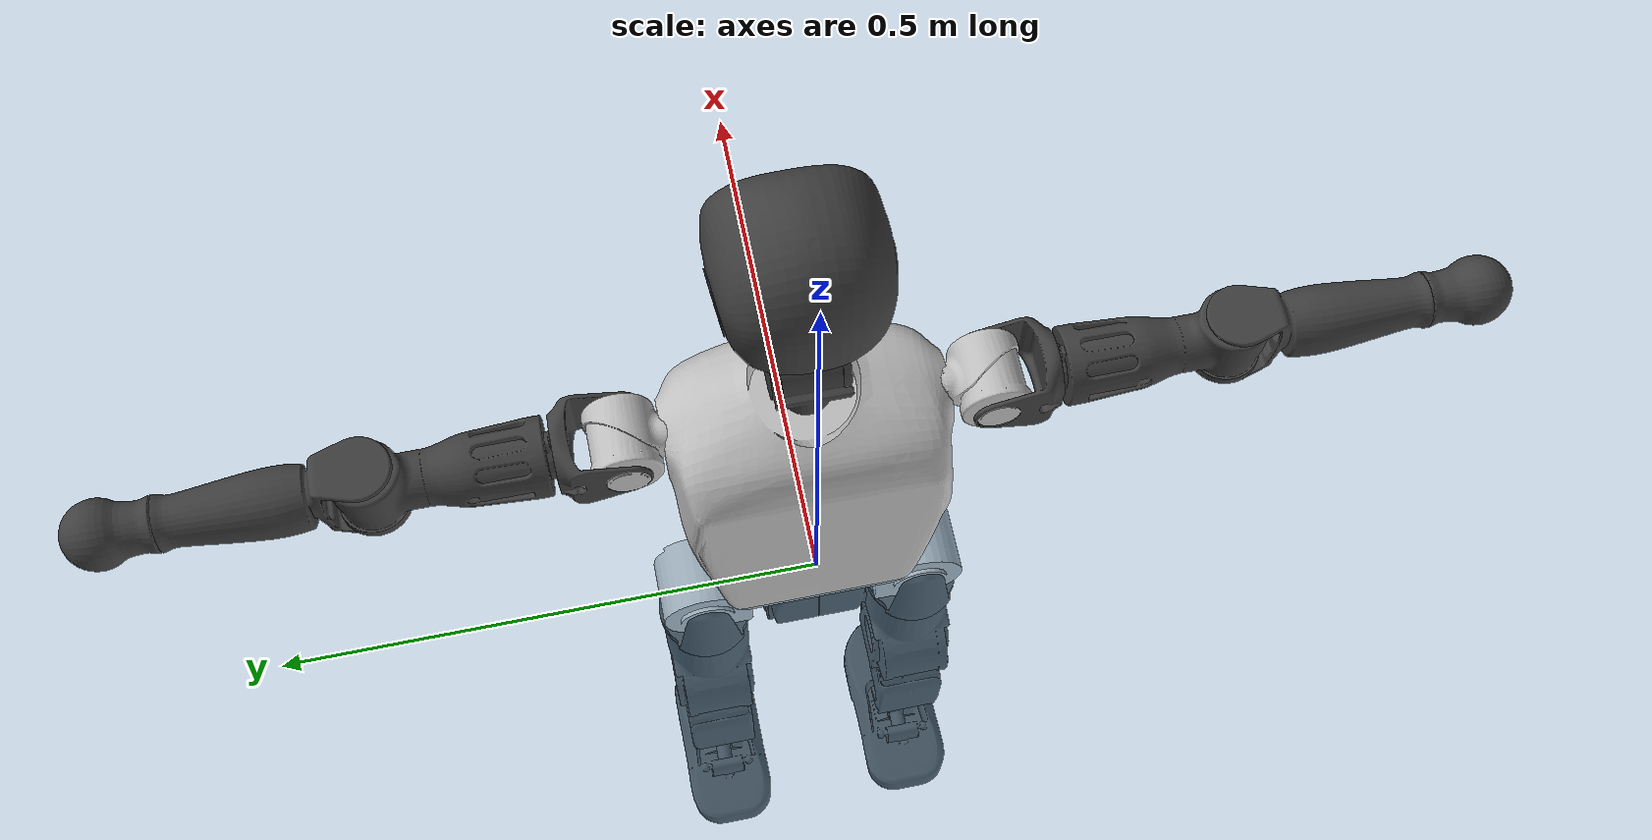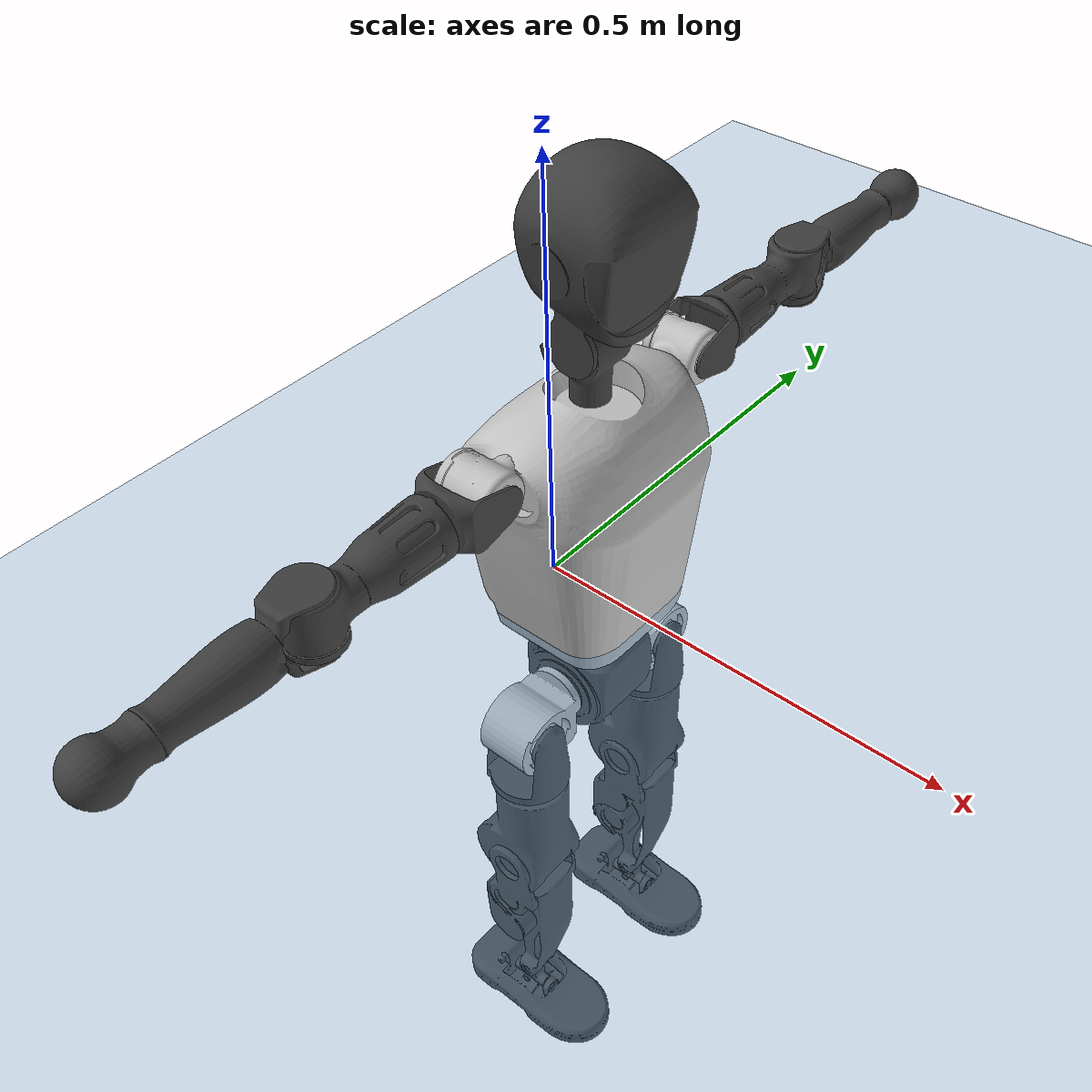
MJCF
<mujoco model="T1">
  <compiler angle="radian" assetdir="assets" balanceinertia="true" inertiafromgeom="false"/>

  <option timestep="0.005" density="1.2" viscosity="2e-05"/>

  <size nkey="1"/>

  <visual>
    <quality shadowsize="8192"/>
    <map shadowclip="0.5"/>
  </visual>

  <default>
    <default class="/">
      <joint armature="0.01" damping="0.01" frictionloss="0.1"/>
      <geom contype="0" conaffinity="0" group="1" solref="-1000 -80"/>
      <site size="0.01 0.005 0.005" group="5"/>
      <general forcelimited="true" biastype="affine" gainprm="25" biasprm="0 -25 -0.6"/>
      <default class="t1">
        <geom rgba="0.25 0.25 0.25 1"/>
        <default class="visual">
          <geom type="mesh" group="2"/>
        </default>
        <default class="collision">
          <geom group="3"/>
        </default>
        <default class="foot">
          <geom size="0.1115 0.05 0.015" type="box" condim="6" group="4" priority="1" solimp="0.015 1 0.015"/>
        </default>
        <default class="reward_collision_sphere">
          <geom group="5" rgba="1 0 0 1"/>
        </default>
      </default>
    </default>
  </default>

  <asset>
    <texture type="skybox" colorspace="auto" name="//unnamed_texture_0" builtin="gradient" rgb1="0.95 0.95 0.95" rgb2="0.95 0.95 0.95" width="100" height="600"/>
    <texture type="2d" colorspace="auto" name="texplane" builtin="checker" rgb1="0.345 0.575 0.748" rgb2="0.345 0.575 0.748" markrgb="1 1 1" width="512" height="512"/>
    <material name="MatPlane" class="/" texture="texplane" texuniform="true" texrepeat="2 2" specular="0.9"/>
    <mesh name="Trunk" class="/" file="Trunk.stl"/>
    <mesh name="H1" class="/" file="H1.stl"/>
    <mesh name="H2" class="/" file="H2.stl"/>
    <mesh name="AL1" class="/" file="AL1.stl"/>
    <mesh name="AL2" class="/" file="AL2.stl"/>
    <mesh name="AL3" class="/" file="AL3.stl"/>
    <mesh name="left_hand_link" class="/" file="left_hand_link.stl"/>
    <mesh name="AR1" class="/" file="AR1.stl"/>
    <mesh name="AR2" class="/" file="AR2.stl"/>
    <mesh name="AR3" class="/" file="AR3.stl"/>
    <mesh name="right_hand_link" class="/" file="right_hand_link.stl"/>
    <mesh name="Waist" class="/" file="Waist.stl"/>
    <mesh name="Hip_Pitch_Left" class="/" file="Hip_Pitch_Left.stl"/>
    <mesh name="Hip_Roll_Left" class="/" file="Hip_Roll_Left.stl"/>
    <mesh name="Hip_Yaw_Left" class="/" file="Hip_Yaw_Left.stl"/>
    <mesh name="Shank_Left" class="/" file="Shank_Left.stl"/>
    <mesh name="Ankle_Cross_Left" class="/" file="Ankle_Cross_Left.stl"/>
    <mesh name="left_foot_link" class="/" file="left_foot_link.stl"/>
    <mesh name="Hip_Pitch_Right" class="/" file="Hip_Pitch_Right.stl"/>
    <mesh name="Hip_Roll_Right" class="/" file="Hip_Roll_Right.stl"/>
    <mesh name="Hip_Yaw_Right" class="/" file="Hip_Yaw_Right.stl"/>
    <mesh name="Shank_Right" class="/" file="Shank_Right.stl"/>
    <mesh name="Ankle_Cross_Right" class="/" file="Ankle_Cross_Right.stl"/>
    <mesh name="right_foot_link" class="/" file="right_foot_link.stl"/>
  </asset>

  <worldbody>
    <geom name="floor" class="/" size="100 100 0.125" type="plane" group="0" material="MatPlane"/>
    <light name="toplight_shadow" class="/" pos="0 0 5" dir="0.0990148 0.0990148 -0.990148" type="directional" ambient="0.04 0.04 0.04" diffuse="0.55 0.55 0.55" specular="0.12 0.12 0.12"/>
    <light name="toplight_fill" class="/" pos="0 0 5" dir="0.0990148 0.0990148 -0.990148" type="directional" castshadow="false" ambient="0.04 0.04 0.04" diffuse="0.3 0.3 0.3" specular="0.08 0.08 0.08"/>
    <body name="trunk" childclass="t1" pos="-0.000134018 0.00076624 0.00031861" quat="1 0.000756441 0.00034287 0.000261902">
      <inertial pos="0.0462804 -0.00176948 0.11516" quat="0.999961 -0.000435358 -0.00865233 -0.00171395" mass="11.3961" diaginertia="0.0455003 0.0858841 0.0825821"/>
      <joint name="//unnamed_joint_0" type="free" armature="0" damping="0" frictionloss="0"/>
      <geom name="//unnamed_geom_1" class="visual" rgba="0.76 0.76 0.76 1" mesh="Trunk"/>
      <geom name="//unnamed_geom_2" class="collision" size="0.0743892 0.0991856 0.148778" pos="0.0520965 0 0.130472" type="box"/>
      <geom name="//unnamed_geom_3" class="reward_collision_sphere" size="0.114063" pos="0.0520965 0 0.108727"/>
      <geom name="//unnamed_geom_4" class="reward_collision_sphere" size="0.0148778" pos="0.0520965 0.0867022 0"/>
      <geom name="//unnamed_geom_5" class="reward_collision_sphere" size="0.0148778" pos="0.0520965 -0.0867022 0"/>
      <geom name="//unnamed_geom_6" class="reward_collision_sphere" size="0.0148778" pos="0.0520965 0.109143 0.195708"/>
      <geom name="//unnamed_geom_7" class="reward_collision_sphere" size="0.0148778" pos="0.0520965 -0.109143 0.195708"/>
      <site name="imu" pos="0.000922005 -0.00183424 -0.000991625" size="0.00991856"/>
      <camera name="track" pos="0 -2.04005 0" quat="0.707107 0.707107 0 0" mode="trackcom"/>
      <camera name="ego_camera" pos="0.10593 0 0.456652" quat="-0.5 -0.5 0.5 0.5"/>
      <body name="H1" pos="0.0546121 -0.0010225 0.262701" quat="1 -0.000404984 0.000288273 0.000199393">
        <inertial pos="-0.000844559 0.000279238 0.0614971" quat="0.762648 -0.00760591 -0.00404257 0.646756" mass="0.42296" diaginertia="0.00011609 0.000236835 0.000221346"/>
        <joint name="AAHead_yaw" pos="0 0 0" axis="0.0083922 -0.000867994 0.999964" stiffness="0.00537775" range="-1.55576 1.56566" armature="0.0101" damping="0.00914941" frictionloss="0.0981425"/>
        <geom name="//unnamed_geom_8" class="visual" mesh="H1"/>
        <body name="H2" pos="-0.000941733 0.0016073 0.0676983" quat="1 1.60671e-05 4.30936e-05 1.09964e-05">
          <inertial pos="0.00523399 0.00224812 0.107287" quat="0.988361 0.106162 -0.0753204 -0.0787318" mass="0.61384" diaginertia="0.00101456 0.00209093 0.00260198"/>
          <joint name="Head_pitch" pos="0 0 0" axis="0.00469104 -0.999986 0.00223593" range="-1.21799 0.349184" armature="0.0090217" damping="0.00611584" frictionloss="0.110431"/>
          <geom name="//unnamed_geom_9" class="visual" mesh="H2"/>
          <geom name="//unnamed_geom_10" class="collision" size="0.0793485" pos="0.00868275 0 0.119599"/>
          <geom name="//unnamed_geom_11" class="reward_collision_sphere" size="0.0892671" pos="0.0173655 0 0.108727"/>
        </body>
      </body>
      <body name="AL1" pos="0.0519594 0.107506 0.236195" quat="1 6.97741e-05 0.000456751 -6.69458e-05">
        <inertial pos="-0.00257361 0.0463231 0.000966457" quat="0.504328 0.496894 -0.505194 0.493486" mass="0.518158" diaginertia="0.000671112 0.00142795 0.000440779"/>
        <joint name="Left_Shoulder_Pitch" pos="0 0 0" axis="0.00453551 0.999941 0.00983755" range="-3.31776 1.23611" armature="0.00987588" damping="0.00709072" frictionloss="0.0984894"/>
        <geom name="//unnamed_geom_12" class="visual" rgba="0.76 0.76 0.76 1" mesh="AL1"/>
        <body name="AL2" pos="0.000257063 0.0476826 -0.00041966" quat="1 -1.7363e-07 3.36827e-05 -3.67284e-05">
          <inertial pos="0.00280865 0.0393661 -0.00129371" quat="0.487384 0.51392 -0.488776 0.509353" mass="0.156693" diaginertia="0.000197401 0.000380241 0.000270336"/>
          <joint name="Left_Shoulder_Roll" pos="0 0 0" axis="-0.999999 -0.000269251 -0.0014795" range="-1.56847 1.74752" armature="0.0100154" damping="0.006735" frictionloss="0.0997302"/>
          <geom name="//unnamed_geom_13" class="visual" mesh="AL2"/>
          <body name="AL3" pos="0.000404462 0.0615136 -0.000426382" quat="1 -1.01066e-05 -1.5307e-05 -3.32313e-05">
            <inertial pos="5.57679e-05 0.0869475 0.000135412" quat="0.71055 0.703606 0.00701863 -0.0028986" mass="0.991403" diaginertia="0.00628179 0.0141245 0.000916257"/>
            <joint name="Left_Elbow_Pitch" pos="0 0 0" axis="-0.000845181 -0.999999 0.000813592" range="-2.25456 2.26633" armature="0.00991137" damping="0.0217371" frictionloss="0.109201"/>
            <geom name="//unnamed_geom_14" class="visual" mesh="AL3"/>
            <geom name="//unnamed_geom_15" class="collision" size="0.0297557 0.0743892" pos="0 0.0510013 0" quat="0.707105 0.707108 0 0" type="cylinder"/>
            <geom name="//unnamed_geom_16" class="reward_collision_sphere" size="0.0357068"/>
            <body name="left_hand_link" pos="0.00203038 0.150422 0.000854199" quat="1 -4.02604e-06 2.80607e-06 -1.16249e-05">
              <inertial pos="0.00143544 0.11185 -0.000783543" quat="0.705912 0.708289 0.00306558 -0.00237629" mass="0.318505" diaginertia="0.00399647 0.00916998 0.000329206"/>
              <joint name="Left_Elbow_Yaw" pos="0 0 0" axis="-0.000175633 0.000597121 1" range="-2.45546 0.0127669" armature="0.00980119" damping="0.00772247" frictionloss="0.0988181"/>
              <geom name="//unnamed_geom_17" class="visual" mesh="left_hand_link"/>
              <geom name="//unnamed_geom_18" class="collision" size="0.0297557 0.0867874" pos="0 0.132603 0" quat="0.707105 0.707108 0 0" type="cylinder"/>
              <geom name="//unnamed_geom_19" class="reward_collision_sphere" size="0.0495928"/>
              <geom name="//unnamed_geom_20" class="reward_collision_sphere" size="0.034715" pos="0 0.112203 0"/>
              <geom name="//unnamed_geom_21" class="reward_collision_sphere" size="0.034715" pos="0 0.219306 0"/>
            </body>
          </body>
        </body>
      </body>
      <body name="AR1" pos="0.0487654 -0.109376 0.238754" quat="0.999999 0.000464407 0.000795723 0.000905094">
        <inertial pos="-0.00123346 -0.045073 -0.00105482" quat="0.503095 0.496023 -0.503963 0.496868" mass="0.52841" diaginertia="0.000685601 0.00145319 0.000454064"/>
        <joint name="Right_Shoulder_Pitch" pos="0 0 0" axis="0.00102441 -0.999999 0.000866672" range="-1.22998 3.30922" armature="0.0103857" damping="0.000320223" frictionloss="0.103842"/>
        <geom name="//unnamed_geom_22" class="visual" rgba="0.76 0.76 0.76 1" mesh="AR1"/>
        <body name="AR2" pos="-0.000740869 -0.0470638 -0.00175562" quat="1 0.000668626 6.42846e-05 0.000153723">
          <inertial pos="0.00440705 -0.0395484 0.00051781" quat="0.512123 0.487148 -0.511702 0.488445" mass="0.155984" diaginertia="0.000197421 0.00037733 0.000267789"/>
          <joint name="Right_Shoulder_Roll" pos="0 0 0" axis="-0.99996 -0.00427455 0.00787672" range="-1.72138 1.58843" armature="0.00991194" damping="0.00171953" frictionloss="0.096956"/>
          <geom name="//unnamed_geom_23" class="visual" mesh="AR2"/>
          <body name="AR3" pos="-0.000530729 -0.0622434 -0.000495535" quat="1 -0.000213822 0.000415143 -0.000587789">
            <inertial pos="0.00188 -0.0867726 -0.00101189" quat="0.70786 0.706353 3.03922e-06 -2.21146e-05" mass="0.996591" diaginertia="0.00652472 0.0146977 0.000973307"/>
            <joint name="Right_Elbow_Pitch" pos="0 0 0" axis="-0.000430852 0.999995 -0.00306098" stiffness="0.00320499" range="-2.25193 2.22194" armature="0.00992038" damping="0.0107316" frictionloss="0.0951738"/>
            <geom name="//unnamed_geom_24" class="visual" mesh="AR3"/>
            <geom name="//unnamed_geom_25" class="collision" size="0.0297557 0.0743892" pos="0 -0.0510013 0" quat="0.707105 0.707108 0 0" type="cylinder"/>
            <geom name="//unnamed_geom_26" class="reward_collision_sphere" size="0.0357068"/>
            <body name="right_hand_link" pos="-0.000259616 -0.149706 0.000723186" quat="1 -0.000469583 0.000258151 0.000274664">
              <inertial pos="0.00155769 -0.112765 -0.000336623" quat="0.706438 0.707775 0.000231799 9.07929e-05" mass="0.307435" diaginertia="0.00380377 0.00874407 0.000324729"/>
              <joint name="Right_Elbow_Yaw" pos="0 0 0" axis="-5.22376e-05 -2.15436e-05 1" stiffness="0.00305158" range="-0.00599387 2.41092" armature="0.0103661" damping="0.00535626" frictionloss="0.100093"/>
              <geom name="//unnamed_geom_27" class="visual" mesh="right_hand_link"/>
              <geom name="//unnamed_geom_28" class="collision" size="0.0297557 0.0867874" pos="0 -0.132603 0" quat="0.707105 0.707108 0 0" type="cylinder"/>
              <geom name="//unnamed_geom_29" class="reward_collision_sphere" size="0.0495928"/>
              <geom name="//unnamed_geom_30" class="reward_collision_sphere" size="0.034715" pos="0 -0.112203 0"/>
              <geom name="//unnamed_geom_31" class="reward_collision_sphere" size="0.034715" pos="0 -0.219306 0"/>
            </body>
          </body>
        </body>
      </body>
      <body name="Waist" pos="0.0541244 -0.0026864 -0.126133" quat="1 -3.55037e-07 -2.17977e-05 -0.000116483">
        <inertial pos="0.000633652 0.000218322 0.00761355" quat="0.983402 0.00181374 -0.181406 0.00299959" mass="2.49369" diaginertia="0.00268409 0.00591111 0.00717309"/>
        <joint name="Waist" pos="0 0 0" axis="0.00269113 0.00530879 0.999982" stiffness="0.0018785" range="-1.55189 1.59114" armature="0.0102055" damping="0.000877934" frictionloss="0.0970472"/>
        <geom name="//unnamed_geom_32" class="visual" mesh="Waist"/>
        <body name="Hip_Pitch_Left" pos="0.00108517 0.108878 0.000222573" quat="1 4.28562e-05 -0.000337453 -0.000159965">
          <inertial pos="0.00158118 -0.00717496 -0.0213563" quat="0.97487 0.222492 0.0104435 0.00401245" mass="1.01354" diaginertia="0.000899865 0.00162706 0.00192177"/>
          <joint name="Left_Hip_Pitch" pos="0 0 0" axis="-0.000233303 1 -7.30534e-05" range="-1.79957 1.59805" armature="0.0101614" damping="0.00342401" frictionloss="0.0977919"/>
          <geom name="//unnamed_geom_33" class="visual" rgba="0.76 0.76 0.76 1" mesh="Hip_Pitch_Left"/>
          <body name="Hip_Roll_Left" pos="0.00228865 1.68469e-05 -0.0227922" quat="1 8.55398e-06 5.99596e-05 1.01247e-05">
            <inertial pos="0.00100203 0.000347988 -0.0595214" quat="0.708311 -0.00444801 -0.00605621 0.705861" mass="0.384064" diaginertia="0.000881736 0.0016732 0.000778219"/>
            <joint name="Left_Hip_Roll" pos="0 0 0" axis="-0.999996 -0.00255968 -0.00099947" range="-1.5498 0.237311" armature="0.0099752" damping="0.00495562" frictionloss="0.10177"/>
            <geom name="//unnamed_geom_34" class="visual" mesh="Hip_Roll_Left"/>
            <geom name="//unnamed_geom_35" class="reward_collision_sphere" size="0.0545521"/>
            <body name="Hip_Yaw_Left" pos="-0.000237771 0.00117717 -0.0872104" quat="1 -5.43873e-06 0.000103225 9.17096e-05">
              <inertial pos="-0.00546327 -0.000488827 -0.0980449" quat="0.693094 -0.0375528 -0.0310987 0.719196" mass="2.07274" diaginertia="0.0124291 0.0269861 0.00386231"/>
              <joint name="Left_Hip_Yaw" pos="0 0 0" axis="0.00123988 0.00100865 -0.999999" range="-1.00366 1.05187" armature="0.00966614" damping="0" frictionloss="0.0997308"/>
              <geom name="//unnamed_geom_36" class="visual" mesh="Hip_Yaw_Left"/>
              <geom name="//unnamed_geom_37" class="collision" size="0.0495928 0.0793485" type="cylinder"/>
              <body name="Shank_Left" pos="-0.0119269 0.000977963 -0.147876" quat="1 4.07711e-05 -0.000306992 -0.000214486">
                <inertial pos="-0.00596665 0.00077758 -0.136284" quat="0.997566 0.00220982 -0.0235614 0.0655895" mass="1.71965" diaginertia="0.0173802 0.0384764 0.00283248"/>
                <joint name="Left_Knee_Pitch" pos="0 0 0" axis="0.00610191 0.999981 4.19037e-05" stiffness="0.000863595" range="-0.0101578 2.34593" armature="0.0098589" damping="0.0170393" frictionloss="0.103349"/>
                <geom name="//unnamed_geom_38" class="visual" mesh="Shank_Left"/>
                <geom name="//unnamed_geom_39" class="collision" size="0.0495928 0.0743892" pos="0 0 -0.130472" type="cylinder"/>
                <geom name="//unnamed_geom_40" class="reward_collision_sphere" size="0.0644707"/>
                <body name="Ankle_Cross_Left" pos="0.00112144 0.000872894 -0.305744" quat="1 0.000225656 -0.000365987 -4.19212e-05">
                  <inertial pos="-0.0048066 0.00190011 -0.00888792" quat="0.442775 0.551208 0.550932 0.443389" mass="0.070894" diaginertia="1.42134e-05 2.76928e-05 1.72103e-05"/>
                  <joint name="Left_Ankle_Pitch" pos="0 0 0" axis="-0.00418169 0.999991 -0.000384582" range="-0.870856 0.341325" armature="0.00925227" damping="0.00310521" frictionloss="0.0968546"/>
                  <geom name="//unnamed_geom_41" class="visual" mesh="Ankle_Cross_Left"/>
                  <body name="left_foot_link" pos="0.000605397 -0.000870471 -0.0115242" quat="0.999999 -0.000992838 -0.000277084 -0.0003578">
                    <inertial pos="-0.00191692 -0.000309932 -0.00890734" quat="0.00190556 0.622581 0.000326674 0.782553" mass="0.667044" diaginertia="0.00131702 0.00260821 0.00334397"/>
                    <joint name="Left_Ankle_Roll" pos="0 0 0" axis="-0.999997 0.000942676 0.00222447" range="-0.472231 0.404461" armature="0.00962055" damping="0.00763534" frictionloss="0.0908718"/>
                    <geom name="//unnamed_geom_42" class="visual" mesh="left_foot_link"/>
                    <geom name="left_foot" class="foot" size="0.104388 0.0505095 0.0150519" pos="0.00868275 0 -0.016309"/>
                    <geom name="//unnamed_geom_44" class="reward_collision_sphere" size="0.0515765" pos="0.00868275 0 -0.016309"/>
                    <geom name="//unnamed_geom_45" class="reward_collision_sphere" size="0.0297557" pos="0.0824862 -0.0234606 -0.016309"/>
                    <geom name="//unnamed_geom_46" class="reward_collision_sphere" size="0.0297557" pos="-0.0607793 -0.0234606 -0.016309"/>
                    <site name="left_foot" class="foot" pos="0.00868275 0 -0.016309" size="0.00991856"/>
                  </body>
                </body>
              </body>
            </body>
          </body>
        </body>
        <body name="Hip_Pitch_Right" pos="-0.0021984 -0.109544 -6.92391e-05" quat="1 -0.000193778 -8.9409e-05 4.57254e-05">
          <inertial pos="-0.000507858 0.00719146 -0.019798" quat="0.973404 -0.2286 0.0135641 -0.00645808" mass="0.992163" diaginertia="0.000909913 0.00161668 0.00192112"/>
          <joint name="Right_Hip_Pitch" pos="0 0 0" axis="1.95376e-05 -1 -1.3768e-05" stiffness="0.00570277" range="-1.55295 1.80729" armature="0.00999234" damping="0.00794309" frictionloss="0.104102"/>
          <geom name="//unnamed_geom_47" class="visual" rgba="0.76 0.76 0.76 1" mesh="Hip_Pitch_Right"/>
          <body name="Hip_Roll_Right" pos="0.00177124 -0.00177469 -0.0225452" quat="1 2.75119e-05 -1.74997e-05 9.08178e-06">
            <inertial pos="0.000319414 -0.0010757 -0.0579915" quat="0.706733 -0.00646088 -0.00685503 0.707418" mass="0.381665" diaginertia="0.00085383 0.00167939 0.00078054"/>
            <joint name="Right_Hip_Roll" pos="0 0 0" axis="-1 0.000496855 -0.00055648" stiffness="0.00721145" range="-0.200835 1.52837" armature="0.00989552" damping="0" frictionloss="0.0896055"/>
            <geom name="//unnamed_geom_48" class="visual" mesh="Hip_Roll_Right"/>
            <geom name="//unnamed_geom_49" class="reward_collision_sphere" size="0.0545521"/>
            <body name="Hip_Yaw_Right" pos="0.00217979 -0.000504382 -0.0889043" quat="1 -0.00020177 -4.23389e-05 -5.5855e-05">
              <inertial pos="-0.00610064 -0.000312846 -0.0970651" quat="0.718212 -0.0276001 -0.0243854 0.694849" mass="2.09282" diaginertia="0.0123941 0.0278366 0.00384452"/>
              <joint name="Right_Hip_Yaw" pos="0 0 0" axis="0.00691287 0.00144897 -0.999975" stiffness="9.62198e-05" range="-0.992125 1.01335" armature="0.00962104" damping="0.00973861" frictionloss="0.101786"/>
              <geom name="//unnamed_geom_50" class="visual" mesh="Hip_Yaw_Right"/>
              <geom name="//unnamed_geom_51" class="collision" size="0.0495928 0.0793485" type="cylinder"/>
              <body name="Shank_Right" pos="-0.00984246 -0.000909608 -0.14551" quat="1 -6.73577e-06 2.38448e-06 -5.1005e-07">
                <inertial pos="-0.00608586 0.000407327 -0.133317" quat="0.999227 0.00661411 -0.0188147 -0.0338911" mass="1.78939" diaginertia="0.0177519 0.039145 0.00301485"/>
                <joint name="Right_Knee_Pitch" pos="0 0 0" axis="0.00231565 -0.99997 0.00742834" range="-2.343 -0.00382552" armature="0.00985907" damping="0.017249" frictionloss="0.0975285"/>
                <geom name="//unnamed_geom_52" class="visual" mesh="Shank_Right"/>
                <geom name="//unnamed_geom_53" class="collision" size="0.0495928 0.0743892" pos="0 0 -0.130472" type="cylinder"/>
                <geom name="//unnamed_geom_54" class="reward_collision_sphere" size="0.0644707"/>
                <body name="Ankle_Cross_Right" pos="-0.000849957 -0.000919246 -0.305786" quat="1 -4.72966e-05 -0.000570437 -2.05328e-05">
                  <inertial pos="-0.00375642 0.0012389 -0.0084734" quat="0.442865 0.550903 0.55108 0.443495" mass="0.0715358" diaginertia="1.39203e-05 2.83819e-05 1.71294e-05"/>
                  <joint name="Right_Ankle_Pitch" pos="0 0 0" axis="0.000114802 -1 -0.000217447" range="-0.3959 0.874174" armature="0.0100019" damping="0.00835759" frictionloss="0.0978037"/>
                  <geom name="//unnamed_geom_55" class="visual" mesh="Ankle_Cross_Right"/>
                  <body name="right_foot_link" pos="0.00149443 0.000265959 -0.013548" quat="1 -2.93392e-05 3.06347e-05 -9.63371e-05">
                    <inertial pos="7.65986e-05 0.000820187 -0.00989859" quat="0.00179868 0.61939 0.00312372 0.785075" mass="0.69638" diaginertia="0.00135729 0.00266854 0.00332461"/>
                    <joint name="Right_Ankle_Roll" pos="0 0 0" axis="-0.99999 0.00118123 0.00421785" range="-0.439929 0.44832" armature="0.0101809" damping="0.00917601" frictionloss="0.089059"/>
                    <geom name="//unnamed_geom_56" class="visual" mesh="right_foot_link"/>
                    <geom name="right_foot" class="foot" size="0.0993442 0.0463952 0.0148883" pos="0.00868275 0 -0.016309"/>
                    <geom name="//unnamed_geom_58" class="reward_collision_sphere" size="0.0396743"/>
                    <geom name="//unnamed_geom_59" class="reward_collision_sphere" size="0.0297557" pos="0.00868275 0 -0.016309"/>
                    <geom name="//unnamed_geom_60" class="reward_collision_sphere" size="0.0297557" pos="0.0824862 0.0234606 -0.016309"/>
                    <geom name="//unnamed_geom_61" class="reward_collision_sphere" size="0.0297557" pos="-0.0607793 0.0234606 -0.016309"/>
                    <site name="right_foot" class="foot" pos="0.00868275 0 -0.016309" size="0.00991856"/>
                  </body>
                </body>
              </body>
            </body>
          </body>
        </body>
      </body>
    </body>
  </worldbody>

  <contact>
    <pair class="/" geom1="floor" geom2="left_foot" name="//unnamed_contact_0"/>
    <pair class="/" geom1="floor" geom2="right_foot" name="//unnamed_contact_1"/>
  </contact>

  <actuator>
    <general name="AAHead_yaw" class="/" joint="AAHead_yaw" forcerange="-7.17336 7.17336" gainprm="23.3656" biasprm="0 -23.3656 -0.567582"/>
    <general name="Head_pitch" class="/" joint="Head_pitch" forcerange="-6.7088 6.7088" gainprm="23.3656" biasprm="0 -23.3656 -0.567582"/>
    <general name="Left_Shoulder_Pitch" class="/" joint="Left_Shoulder_Pitch" forcerange="-16.2196 16.2196" gainprm="23.3656" biasprm="0 -23.3656 -0.567582"/>
    <general name="Left_Shoulder_Roll" class="/" joint="Left_Shoulder_Roll" forcerange="-17.7987 17.7987" gainprm="23.3656" biasprm="0 -23.3656 -0.567582"/>
    <general name="Left_Elbow_Pitch" class="/" joint="Left_Elbow_Pitch" forcerange="-18.4562 18.4562" gainprm="23.3656" biasprm="0 -23.3656 -0.567582"/>
    <general name="Left_Elbow_Yaw" class="/" joint="Left_Elbow_Yaw" forcerange="-18.189 18.189" gainprm="23.3656" biasprm="0 -23.3656 -0.567582"/>
    <general name="Right_Shoulder_Pitch" class="/" joint="Right_Shoulder_Pitch" forcerange="-18.0173 18.0173" gainprm="23.3656" biasprm="0 -23.3656 -0.567582"/>
    <general name="Right_Shoulder_Roll" class="/" joint="Right_Shoulder_Roll" forcerange="-17.7671 17.7671" gainprm="23.3656" biasprm="0 -23.3656 -0.567582"/>
    <general name="Right_Elbow_Pitch" class="/" joint="Right_Elbow_Pitch" forcerange="-18.3092 18.3092" gainprm="23.3656" biasprm="0 -23.3656 -0.567582"/>
    <general name="Right_Elbow_Yaw" class="/" joint="Right_Elbow_Yaw" forcerange="-18.1618 18.1618" gainprm="23.3656" biasprm="0 -23.3656 -0.567582"/>
    <general name="Waist" class="/" joint="Waist" forcerange="-30.7006 30.7006" gainprm="23.3656" biasprm="0 -23.3656 -0.567582"/>
    <general name="Left_Hip_Pitch" class="/" joint="Left_Hip_Pitch" forcerange="-43.7991 43.7991" gainprm="23.3656" biasprm="0 -23.3656 -0.567582"/>
    <general name="Left_Hip_Roll" class="/" joint="Left_Hip_Roll" forcerange="-30.5721 30.5721" gainprm="23.3656" biasprm="0 -23.3656 -0.567582"/>
    <general name="Left_Hip_Yaw" class="/" joint="Left_Hip_Yaw" forcerange="-30.5489 30.5489" gainprm="23.3656" biasprm="0 -23.3656 -0.567582"/>
    <general name="Left_Knee_Pitch" class="/" joint="Left_Knee_Pitch" forcerange="-56.9801 56.9801" gainprm="23.3656" biasprm="0 -23.3656 -0.567582"/>
    <general name="Left_Ankle_Pitch" class="/" joint="Left_Ankle_Pitch" forcerange="-21.2652 21.2652" gainprm="23.3656" biasprm="0 -23.3656 -0.567582"/>
    <general name="Left_Ankle_Roll" class="/" joint="Left_Ankle_Roll" forcerange="-14.0575 14.0575" gainprm="23.3656" biasprm="0 -23.3656 -0.567582"/>
    <general name="Right_Hip_Pitch" class="/" joint="Right_Hip_Pitch" forcerange="-44.8125 44.8125" gainprm="23.3656" biasprm="0 -23.3656 -0.567582"/>
    <general name="Right_Hip_Roll" class="/" joint="Right_Hip_Roll" forcerange="-31.3888 31.3888" gainprm="23.3656" biasprm="0 -23.3656 -0.567582"/>
    <general name="Right_Hip_Yaw" class="/" joint="Right_Hip_Yaw" forcerange="-29.1981 29.1981" gainprm="23.3656" biasprm="0 -23.3656 -0.567582"/>
    <general name="Right_Knee_Pitch" class="/" joint="Right_Knee_Pitch" forcerange="-59.1564 59.1564" gainprm="23.3656" biasprm="0 -23.3656 -0.567582"/>
    <general name="Right_Ankle_Pitch" class="/" joint="Right_Ankle_Pitch" forcerange="-19.7957 19.7957" gainprm="23.3656" biasprm="0 -23.3656 -0.567582"/>
    <general name="Right_Ankle_Roll" class="/" joint="Right_Ankle_Roll" forcerange="-15.4777 15.4777" gainprm="23.3656" biasprm="0 -23.3656 -0.567582"/>
  </actuator>

  <sensor>
    <gyro site="imu" name="imu_angular_velocity"/>
    <velocimeter site="imu" name="imu_linear_velocity"/>
    <framelinvel objtype="site" objname="left_foot" name="left_foot_global_linear_velocity"/>
    <framelinvel objtype="site" objname="right_foot" name="right_foot_global_linear_velocity"/>
  </sensor>

  <keyframe>
    <key name="home" qpos="0 0 0.6385 1 0 0 0 0 0 0 1.4 0 -0.4 0 -1.4 0 0.4 0 -0.4 0 0 0.8 -0.4 0 0.4 0 0 -0.8 0.4 0"/>
  </keyframe>
</mujoco>
